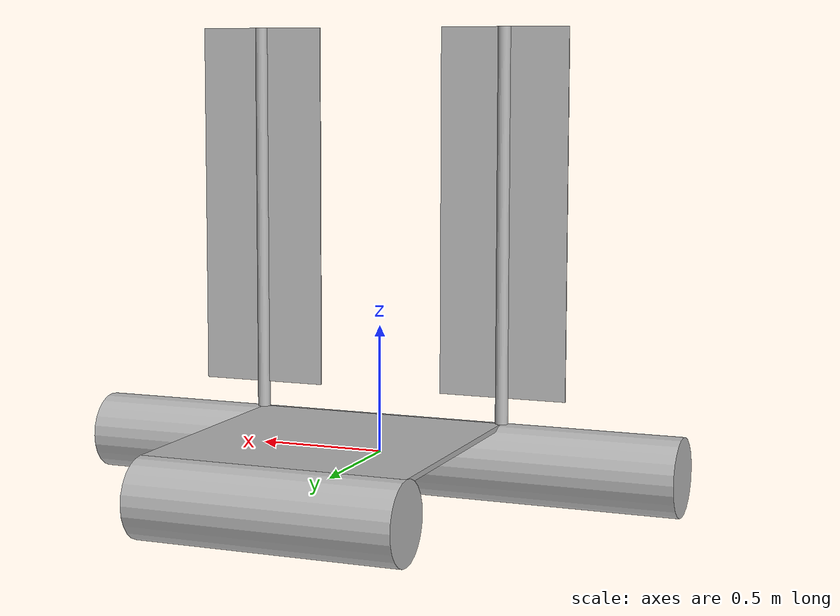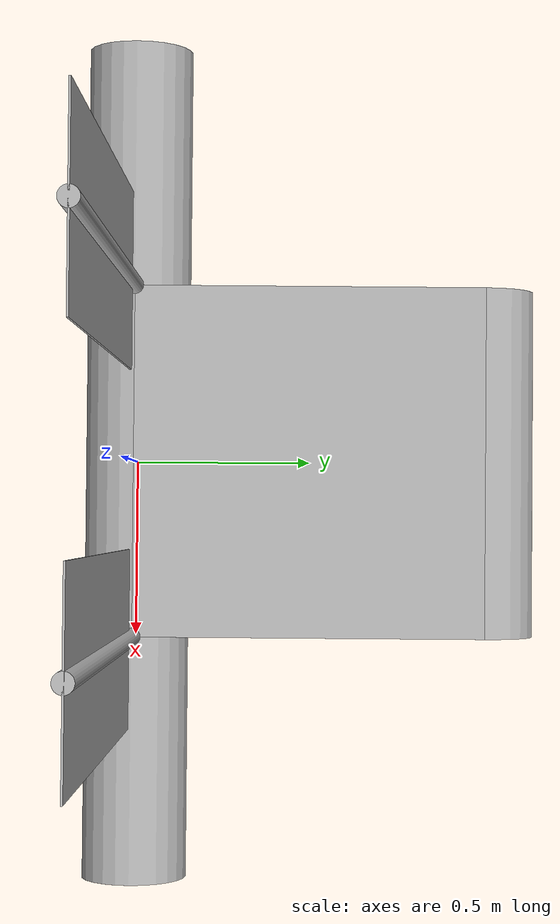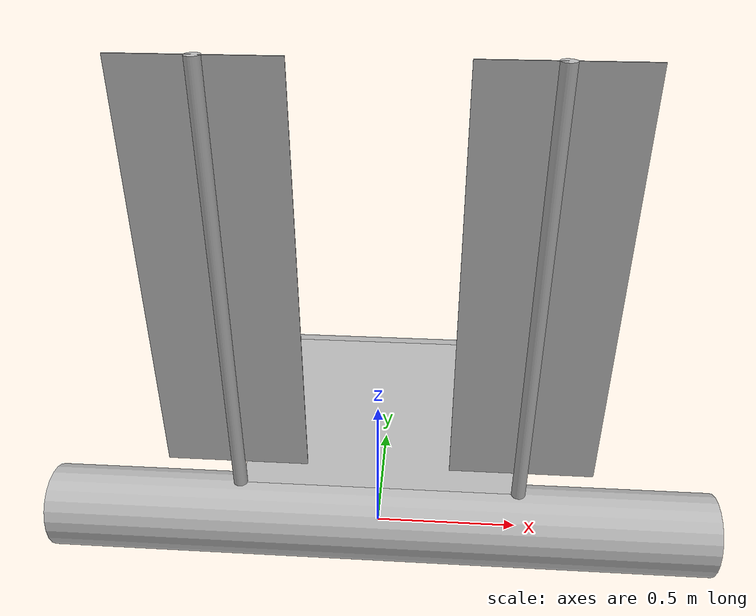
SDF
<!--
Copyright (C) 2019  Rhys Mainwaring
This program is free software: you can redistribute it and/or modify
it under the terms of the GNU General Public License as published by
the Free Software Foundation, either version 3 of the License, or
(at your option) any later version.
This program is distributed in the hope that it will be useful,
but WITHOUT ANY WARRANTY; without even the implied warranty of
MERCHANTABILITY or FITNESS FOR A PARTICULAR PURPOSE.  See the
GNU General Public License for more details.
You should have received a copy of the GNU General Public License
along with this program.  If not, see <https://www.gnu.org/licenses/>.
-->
<?xml version='1.0'?>
<sdf version='1.6'>
  <model name='proa_boat'>
    <static>false</static>
    <enable_wind>true</enable_wind>

    <plugin name="hydrodynamics" filename="libHydrodynamicsPlugin.so">
      <!-- Wave Model -->
      <wave_model>ocean_waves</wave_model>

      <!-- Hydrodynamics -->
      <damping_on>true</damping_on>
      <viscous_drag_on>true</viscous_drag_on>
      <pressure_drag_on>true</pressure_drag_on>

      <!-- Markers -->
      <markers>
        <update_rate>30</update_rate>
        <water_patch>false</water_patch>
        <waterline>false</waterline>
        <underwater_surface>false</underwater_surface>
      </markers>
    </plugin>

    <link name="leeward_hull">
      <enable_wind>false</enable_wind>
      <pose>0 0 0 0 1.5707 0</pose>
      <inertial>
        <mass>16.9</mass>
        <inertia>
          <ixx>0.19</ixx>
          <ixy>0</ixy>
          <iyy>8.23</iyy>
          <iyz>0</iyz>
          <izz>8.23</izz>
        </inertia>
      </inertial>
      <collision name="leeward_hull_collision">
        <geometry>
          <cylinder>
            <radius>0.15</radius>
            <length>2.4</length>
          </cylinder>
        </geometry>
        <surface>
          <friction>
            <ode>
              <mu>0.25</mu>
              <mu2>0.25</mu2>
            </ode>
          </friction>
        </surface>
      </collision>
      <visual name="leeward_hull_visual">
        <geometry>
          <cylinder>
            <radius>0.15</radius>
            <length>2.4</length>
          </cylinder>
        </geometry>
      </visual>
    </link>

    <link name="windward_hull">
      <enable_wind>false</enable_wind>
      <pose>0 1.0 0 0 1.5707 0</pose>
      <inertial>
        <mass>7.0</mass>
        <inertia>
          <ixx>0.08</ixx>
          <ixy>0</ixy>
          <iyy>0.62</iyy>
          <iyz>0</iyz>
          <izz>0.62</izz>
        </inertia>
      </inertial>
      <collision name="windward_hull_collision">
        <geometry>
          <cylinder>
            <radius>0.15</radius>
            <length>1.0</length>
          </cylinder>
        </geometry>
        <surface>
          <friction>
            <ode>
              <mu>0.25</mu>
              <mu2>0.25</mu2>
            </ode>
          </friction>
        </surface>
      </collision>
      <visual name="windward_hull_visual">
        <geometry>
          <cylinder>
            <radius>0.15</radius>
            <length>1.0</length>
          </cylinder>
        </geometry>
      </visual>
    </link>

    <link name="deck">
      <enable_wind>false</enable_wind>
      <pose>0 0.5 0.14 0 0 0</pose>
      <inertial>
        <mass>2.0</mass>
        <inertia>
          <ixx>0.16</ixx>
          <ixy>0</ixy>
          <iyy>0.16</iyy>
          <iyz>0</iyz>
          <izz>0.33</izz>
        </inertia>
      </inertial>
      <collision name="deck_collision">
        <geometry>
          <box>
            <size>1.0 1.0 0.02</size>
          </box>
        </geometry>
      </collision>
      <visual name="deck_visual">
        <geometry>
          <box>
            <size>1.0 1.0 0.02</size>
          </box>
        </geometry>
      </visual>
    </link>

    <link name="fore_mast">
      <enable_wind>false</enable_wind>
      <pose>0.5 0 0.90 0 0 0</pose>
      <inertial>
        <mass>0.3</mass>
        <inertia>
          <ixx>0.055</ixx>
          <ixy>0</ixy>
          <iyy>0.055</iyy>
          <iyz>0</iyz>
          <izz>0.00009</izz>
        </inertia>
      </inertial>
      <collision name="fore_mast_collision">
        <geometry>
          <cylinder>
            <radius>0.025</radius>
            <length>1.5</length>
          </cylinder>
        </geometry>
      </collision>
      <visual name="fore_mast_visual">
        <geometry>
          <cylinder>
            <radius>0.025</radius>
            <length>1.5</length>
          </cylinder>
        </geometry>
      </visual>
    </link>

    <link name="fore_sail">
      <enable_wind>true</enable_wind>
      <pose>0.5 0 0.95 0 0 0</pose>
      <inertial>
        <mass>0.35</mass>
        <inertia>
          <ixx>0.057</ixx>
          <ixy>0</ixy>
          <iyy>0.064</iyy>
          <iyz>0</iyz>
          <izz>0.0072</izz>
        </inertia>
      </inertial>
      <collision name="fore_sail_collision">
        <geometry>
          <box>
            <size>0.5 0.005 1.4</size>
          </box>
        </geometry>
      </collision>
      <visual name="fore_sail_visual">
        <geometry>
          <box>
            <size>0.5 0.005 1.4</size>
          </box>
        </geometry>
      </visual>
    </link>

    <link name="aft_mast">
      <enable_wind>false</enable_wind>
      <pose>-0.5 0 0.90 0 0 0</pose>
      <inertial>
        <mass>0.3</mass>
        <inertia>
          <ixx>0.055</ixx>
          <ixy>0</ixy>
          <iyy>0.055</iyy>
          <iyz>0</iyz>
          <izz>0.00009</izz>
        </inertia>
      </inertial>
      <collision name="aft_mast_collision">
        <geometry>
          <cylinder>
            <radius>0.025</radius>
            <length>1.5</length>
          </cylinder>
        </geometry>
      </collision>
      <visual name="aft_mast_visual">
        <geometry>
          <cylinder>
            <radius>0.025</radius>
            <length>1.5</length>
          </cylinder>
        </geometry>
      </visual>
    </link>

    <link name="aft_sail">
      <enable_wind>true</enable_wind>
      <pose>-0.5 0 0.95 0 0 0</pose>
      <inertial>
        <mass>0.35</mass>
        <inertia>
          <ixx>0.057</ixx>
          <ixy>0</ixy>
          <iyy>0.064</iyy>
          <iyz>0</iyz>
          <izz>0.0072</izz>
        </inertia>
      </inertial>
      <collision name="aft_sail_collision">
        <geometry>
          <box>
            <size>0.5 0.005 1.4</size>
          </box>
        </geometry>
      </collision>
      <visual name="aft_sail_visual">
        <geometry>
          <box>
            <size>0.5 0.005 1.4</size>
          </box>
        </geometry>
      </visual>
    </link>

    <!-- hulls & deck  -->
    <joint type="fixed" name="leeward_hull_deck_joint">
      <pose>0 0 0 0 0 0</pose>
      <child>deck</child>
      <parent>leeward_hull</parent>
    </joint>

    <joint type="fixed" name="deck_windward_hull_joint">
      <pose>0 0 0 0 0 0</pose>
      <child>windward_hull</child>
      <parent>deck</parent>
    </joint>

    <!-- mast & sails  -->
    <joint type="fixed" name="fore_mast_fore_sail_joint">
      <pose>0 0 0 0 0 0</pose>
      <child>fore_sail</child>
      <parent>fore_mast</parent>
    </joint>

    <joint type="revolute" name="leeward_hull_fore_mast_joint">
      <pose>0 0 0 0 0 0</pose>
      <child>fore_mast</child>
      <parent>leeward_hull</parent>
      <axis>
        <xyz>0 0 1</xyz>
      </axis>
    </joint>

    <joint type="fixed" name="aft_mast_fore_sail_joint">
      <pose>0 0 0 0 0 0</pose>
      <child>aft_sail</child>
      <parent>aft_mast</parent>
    </joint>

    <joint type="revolute" name="leeward_hull_aft_mast_joint">
      <pose>0 0 0 0 0 0</pose>
      <child>aft_mast</child>
      <parent>leeward_hull</parent>
      <axis>
        <xyz>0 0 1</xyz>
      </axis>
    </joint>

  </model>
</sdf>
